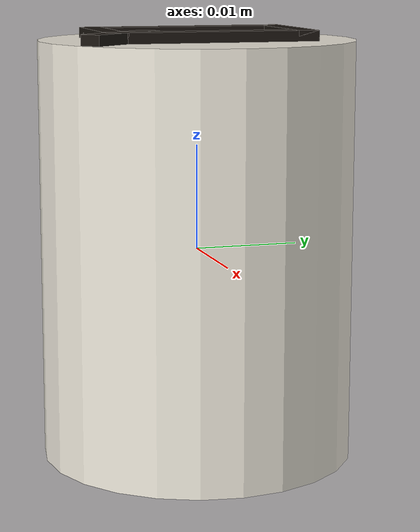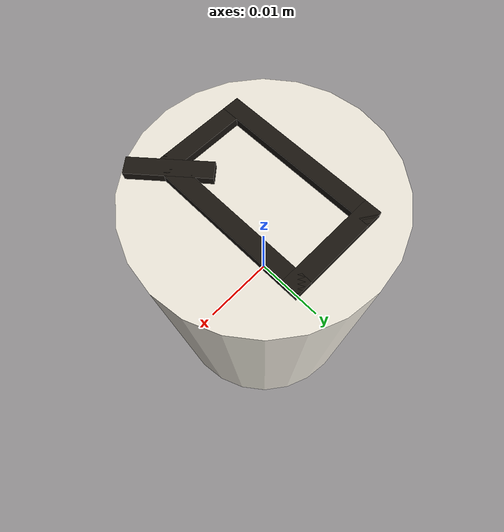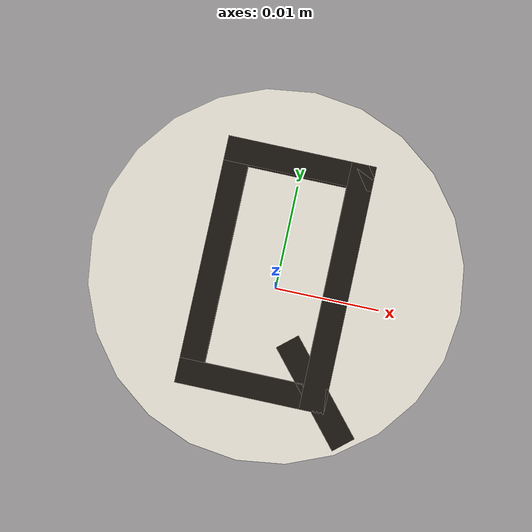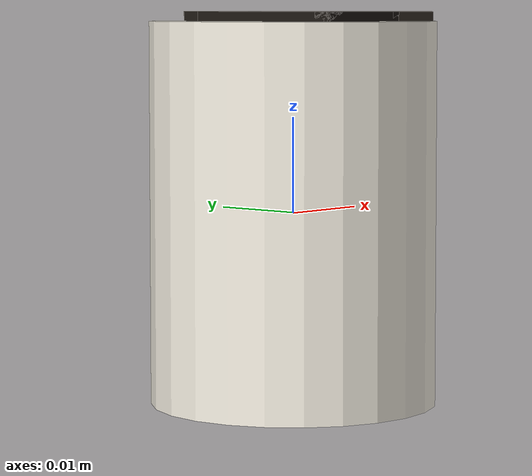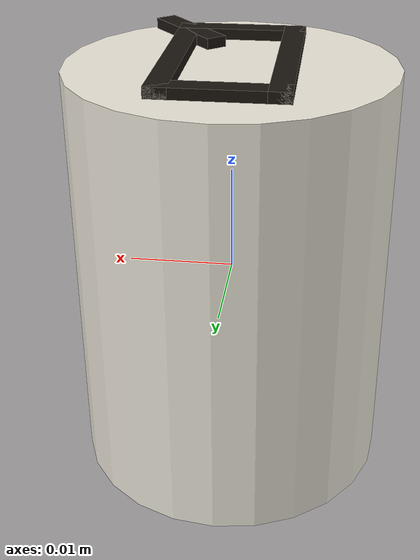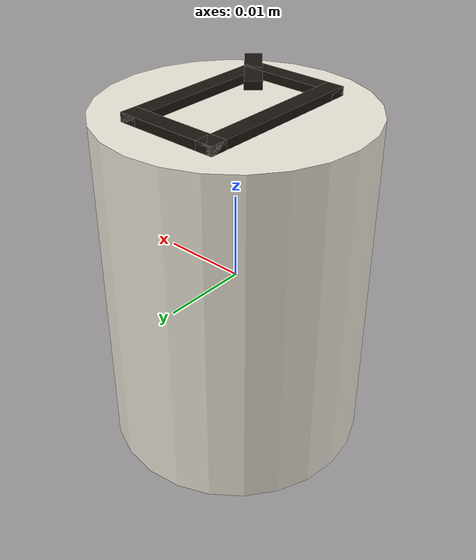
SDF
<?xml version="1.0" ?>
<sdf version="1.9">
  <model name="queen_white">
    <static>false</static>
    <pose>0 0 0 0 0 0</pose>

    <link name="link">

      <inertial>
        <mass>0.05</mass>
        <inertia>
          <ixx>0.00002</ixx>
          <iyy>0.00002</iyy>
          <izz>0.00001</izz>
        </inertia>
      </inertial>

      <collision name="collision">
        <geometry>
          <cylinder>
            <radius>0.015</radius>
            <length>0.04</length>
          </cylinder>
        </geometry>
        <surface>
          <friction>
            <ode>
              <mu>1.8</mu>
              <mu2>1.8</mu2>
            </ode>
          </friction>
        </surface>
      </collision>

      <visual name="visual">
        <geometry>
          <cylinder>
            <radius>0.015</radius>
            <length>0.04</length>
          </cylinder>
        </geometry>
        <material>
          <ambient>0.92 0.90 0.85 1</ambient>
          <diffuse>0.92 0.90 0.85 1</diffuse>
        </material>
      </visual>

      <!-- "Q" imprint: rectangular outline + diagonal tail at bottom-right. -->
      <visual name="letter_top">
        <pose>0 0.009 0.0205 0 0 0</pose>
        <geometry><box><size>0.012 0.002 0.001</size></box></geometry>
        <material>
          <ambient>0.10 0.08 0.06 1</ambient>
          <diffuse>0.10 0.08 0.06 1</diffuse>
        </material>
      </visual>
      <visual name="letter_bottom">
        <pose>0 -0.009 0.0205 0 0 0</pose>
        <geometry><box><size>0.012 0.002 0.001</size></box></geometry>
        <material>
          <ambient>0.10 0.08 0.06 1</ambient>
          <diffuse>0.10 0.08 0.06 1</diffuse>
        </material>
      </visual>
      <visual name="letter_left">
        <pose>-0.005 0 0.0205 0 0 0</pose>
        <geometry><box><size>0.002 0.020 0.001</size></box></geometry>
        <material>
          <ambient>0.10 0.08 0.06 1</ambient>
          <diffuse>0.10 0.08 0.06 1</diffuse>
        </material>
      </visual>
      <visual name="letter_right">
        <pose>0.005 0 0.0205 0 0 0</pose>
        <geometry><box><size>0.002 0.020 0.001</size></box></geometry>
        <material>
          <ambient>0.10 0.08 0.06 1</ambient>
          <diffuse>0.10 0.08 0.06 1</diffuse>
        </material>
      </visual>
      <visual name="letter_tail">
        <pose>0.005 -0.0085 0.0205 0 0 -0.862</pose>
        <geometry><box><size>0.00922 0.002 0.001</size></box></geometry>
        <material>
          <ambient>0.10 0.08 0.06 1</ambient>
          <diffuse>0.10 0.08 0.06 1</diffuse>
        </material>
      </visual>

    </link>
  </model>
</sdf>
